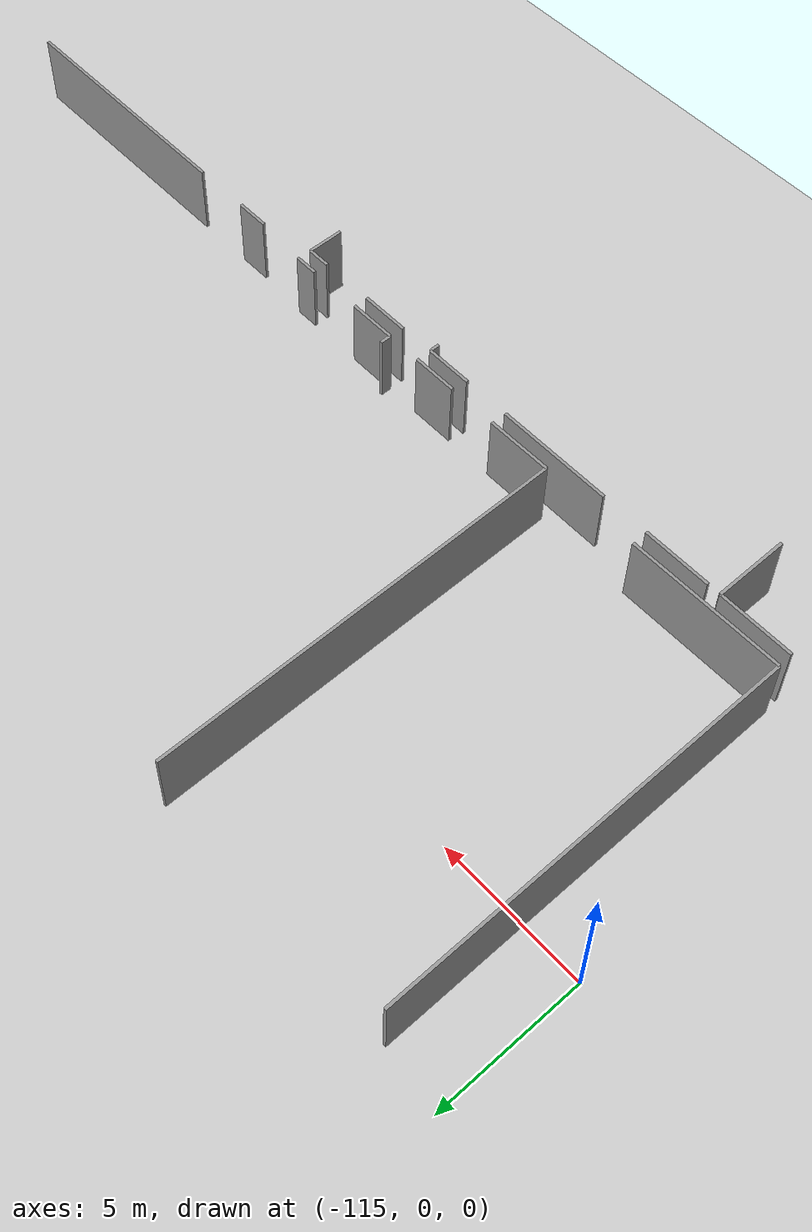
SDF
<sdf version="1.6">
 <world name="default">
  <model name="ground_plane">
   <static>1</static>
   <link name="link">
    <collision name="collision">
     <geometry><plane><normal>0 0 1</normal><size>100 100</size></plane></geometry>
     <surface><friction><ode><mu>100</mu><mu2>50</mu2></ode></friction></surface>
    </collision>
    <visual name="visual">
     <cast_shadows>0</cast_shadows>
     <geometry><plane><normal>0 0 1</normal><size>100 100</size></plane></geometry>
     <material>
      <script><uri>file://media/materials/scripts/gazebo.material</uri><name>Gazebo/Grey</name></script>
     </material>
    </visual>
   </link>
  </model>
  <model name="0510035341_A_40_1_103">
   <static>1</static>
   <link name="Wall_0">
    <collision name="Wall_0_Collision">
     <geometry><box><size>14.1568154403 0.1 2.5</size></box></geometry>
     <pose>7.07840772014 0 1.25 0 0 0</pose>
    </collision>
    <visual name="Wall_0_Visual">
     <pose>7.07840772014 0 1.25 0 0 0</pose>
     <geometry><box><size>14.1568154403 0.1 2.5</size></box></geometry>
     <material>
      <script><uri>file://media/materials/scripts/gazebo.material</uri><name>Gazebo/Grey</name></script>
      <ambient>1 1 1 1</ambient>
     </material>
    </visual>
    <pose>0.0 -33.466827503 0 0 0 1.57079632679</pose>
   </link>
   <link name="Wall_5">
    <collision name="Wall_5_Collision">
     <geometry><box><size>5.35012100205 0.1 2.5</size></box></geometry>
     <pose>2.67506050102 0 1.25 0 0 0</pose>
    </collision>
    <visual name="Wall_5_Visual">
     <pose>2.67506050102 0 1.25 0 0 0</pose>
     <geometry><box><size>5.35012100205 0.1 2.5</size></box></geometry>
     <material>
      <script><uri>file://media/materials/scripts/gazebo.material</uri><name>Gazebo/Grey</name></script>
      <ambient>1 1 1 1</ambient>
     </material>
    </visual>
    <pose>5.3500095232 -33.4322900133 0 0 0 -3.13513714921</pose>
   </link>
   <link name="Wall_6">
    <collision name="Wall_6_Collision">
     <geometry><box><size>14.1573233445 0.1 2.5</size></box></geometry>
     <pose>7.07866167227 0 1.25 0 0 0</pose>
    </collision>
    <visual name="Wall_6_Visual">
     <pose>7.07866167227 0 1.25 0 0 0</pose>
     <geometry><box><size>14.1573233445 0.1 2.5</size></box></geometry>
     <material>
      <script><uri>file://media/materials/scripts/gazebo.material</uri><name>Gazebo/Grey</name></script>
      <ambient>1 1 1 1</ambient>
     </material>
    </visual>
    <pose>8.8136626246 -33.4673354073 0 0 0 1.57079632679</pose>
   </link>
   <link name="Wall_13">
    <collision name="Wall_13_Collision">
     <geometry><box><size>0.806551964955 0.1 2.5</size></box></geometry>
     <pose>0.403275982477 0 1.25 0 0 0</pose>
    </collision>
    <visual name="Wall_13_Visual">
     <pose>0.403275982477 0 1.25 0 0 0</pose>
     <geometry><box><size>0.806551964955 0.1 2.5</size></box></geometry>
     <material>
      <script><uri>file://media/materials/scripts/gazebo.material</uri><name>Gazebo/Grey</name></script>
      <ambient>1 1 1 1</ambient>
     </material>
    </visual>
    <pose>19.8176623706 -33.4599707955 0 0 0 3.14159265359</pose>
   </link>
   <link name="Wall_14">
    <collision name="Wall_14_Collision">
     <geometry><box><size>1.62884896197 0.1 2.5</size></box></geometry>
     <pose>0.814424480985 0 1.25 0 0 0</pose>
    </collision>
    <visual name="Wall_14_Visual">
     <pose>0.814424480985 0 1.25 0 0 0</pose>
     <geometry><box><size>1.62884896197 0.1 2.5</size></box></geometry>
     <material>
      <script><uri>file://media/materials/scripts/gazebo.material</uri><name>Gazebo/Grey</name></script>
      <ambient>1 1 1 1</ambient>
     </material>
    </visual>
    <pose>17.1341502127 -33.4599707955 0 0 0 3.14159265359</pose>
   </link>
   <link name="Wall_15">
    <collision name="Wall_15_Collision">
     <geometry><box><size>0.371278014094 0.1 2.5</size></box></geometry>
     <pose>0.185639007047 0 1.25 0 0 0</pose>
    </collision>
    <visual name="Wall_15_Visual">
     <pose>0.185639007047 0 1.25 0 0 0</pose>
     <geometry><box><size>0.371278014094 0.1 2.5</size></box></geometry>
     <material>
      <script><uri>file://media/materials/scripts/gazebo.material</uri><name>Gazebo/Grey</name></script>
      <ambient>1 1 1 1</ambient>
     </material>
    </visual>
    <pose>15.5053012507 -33.4599707955 0 0 0 1.57079632679</pose>
   </link>
   <link name="Wall_18">
    <collision name="Wall_18_Collision">
     <geometry><box><size>1.54377499841 0.1 2.5</size></box></geometry>
     <pose>0.771887499206 0 1.25 0 0 0</pose>
    </collision>
    <visual name="Wall_18_Visual">
     <pose>0.771887499206 0 1.25 0 0 0</pose>
     <geometry><box><size>1.54377499841 0.1 2.5</size></box></geometry>
     <material>
      <script><uri>file://media/materials/scripts/gazebo.material</uri><name>Gazebo/Grey</name></script>
      <ambient>1 1 1 1</ambient>
     </material>
    </visual>
    <pose>14.2931877341 -33.4546378008 0 0 0 3.14159265359</pose>
   </link>
   <link name="Wall_19">
    <collision name="Wall_19_Collision">
     <geometry><box><size>2.24751221937 0.1 2.5</size></box></geometry>
     <pose>1.12375610968 0 1.25 0 0 0</pose>
    </collision>
    <visual name="Wall_19_Visual">
     <pose>1.12375610968 0 1.25 0 0 0</pose>
     <geometry><box><size>2.24751221937 0.1 2.5</size></box></geometry>
     <material>
      <script><uri>file://media/materials/scripts/gazebo.material</uri><name>Gazebo/Grey</name></script>
      <ambient>1 1 1 1</ambient>
     </material>
    </visual>
    <pose>11.0611389753 -33.4546378008 0 0 0 -3.13594299619</pose>
   </link>
   <link name="Wall_254">
    <collision name="Wall_254_Collision">
     <geometry><box><size>1.13237254777 0.1 2.5</size></box></geometry>
     <pose>0.566186273887 0 1.25 0 0 0</pose>
    </collision>
    <visual name="Wall_254_Visual">
     <pose>0.566186273887 0 1.25 0 0 0</pose>
     <geometry><box><size>1.13237254777 0.1 2.5</size></box></geometry>
     <material>
      <script><uri>file://media/materials/scripts/gazebo.material</uri><name>Gazebo/Grey</name></script>
      <ambient>1 1 1 1</ambient>
     </material>
    </visual>
    <pose>21.6491651324 -33.5973588978 0 0 0 0.0</pose>
   </link>
   <link name="Wall_255">
    <collision name="Wall_255_Collision">
     <geometry><box><size>8.49800012698 0.1 2.5</size></box></geometry>
     <pose>4.24900006349 0 1.25 0 0 0</pose>
    </collision>
    <visual name="Wall_255_Visual">
     <pose>4.24900006349 0 1.25 0 0 0</pose>
     <geometry><box><size>8.49800012698 0.1 2.5</size></box></geometry>
     <material>
      <script><uri>file://media/materials/scripts/gazebo.material</uri><name>Gazebo/Grey</name></script>
      <ambient>1 1 1 1</ambient>
     </material>
    </visual>
    <pose>24.740270459 -33.5973588978 0 0 0 0.0</pose>
   </link>
   <link name="Wall_455">
    <collision name="Wall_455_Collision">
     <geometry><box><size>2.5679639388 0.1 2.5</size></box></geometry>
     <pose>1.2839819694 0 1.25 0 0 0</pose>
    </collision>
    <visual name="Wall_455_Visual">
     <pose>1.2839819694 0 1.25 0 0 0</pose>
     <geometry><box><size>2.5679639388 0.1 2.5</size></box></geometry>
     <material>
      <script><uri>file://media/materials/scripts/gazebo.material</uri><name>Gazebo/Grey</name></script>
      <ambient>1 1 1 1</ambient>
     </material>
    </visual>
    <pose>0.0137134150213 -33.9813345184 0 0 0 0.0</pose>
   </link>
   <link name="Wall_456">
    <collision name="Wall_456_Collision">
     <geometry><box><size>2.53952130023 0.1 2.5</size></box></geometry>
     <pose>1.26976065012 0 1.25 0 0 0</pose>
    </collision>
    <visual name="Wall_456_Visual">
     <pose>1.26976065012 0 1.25 0 0 0</pose>
     <geometry><box><size>2.53952130023 0.1 2.5</size></box></geometry>
     <material>
      <script><uri>file://media/materials/scripts/gazebo.material</uri><name>Gazebo/Grey</name></script>
      <ambient>1 1 1 1</ambient>
     </material>
    </visual>
    <pose>2.58167735382 -33.9813345184 0 0 0 -1.57079632679</pose>
   </link>
   <link name="Wall_461">
    <collision name="Wall_461_Collision">
     <geometry><box><size>2.33508983557 0.1 2.5</size></box></geometry>
     <pose>1.16754491778 0 1.25 0 0 0</pose>
    </collision>
    <visual name="Wall_461_Visual">
     <pose>1.16754491778 0 1.25 0 0 0</pose>
     <geometry><box><size>2.33508983557 0.1 2.5</size></box></geometry>
     <material>
      <script><uri>file://media/materials/scripts/gazebo.material</uri><name>Gazebo/Grey</name></script>
      <ambient>1 1 1 1</ambient>
     </material>
    </visual>
    <pose>3.02583962923 -33.978541045 0 0 0 0.0</pose>
   </link>
   <link name="Wall_462">
    <collision name="Wall_462_Collision">
     <geometry><box><size>4.01930036188 0.1 2.5</size></box></geometry>
     <pose>2.00965018094 0 1.25 0 0 0</pose>
    </collision>
    <visual name="Wall_462_Visual">
     <pose>2.00965018094 0 1.25 0 0 0</pose>
     <geometry><box><size>4.01930036188 0.1 2.5</size></box></geometry>
     <material>
      <script><uri>file://media/materials/scripts/gazebo.material</uri><name>Gazebo/Grey</name></script>
      <ambient>1 1 1 1</ambient>
     </material>
    </visual>
    <pose>7.01339597486 -33.978541045 0 0 0 0.0</pose>
   </link>
   <link name="Wall_463">
    <collision name="Wall_463_Collision">
     <geometry><box><size>1.61208812139 0.1 2.5</size></box></geometry>
     <pose>0.806044060695 0 1.25 0 0 0</pose>
    </collision>
    <visual name="Wall_463_Visual">
     <pose>0.806044060695 0 1.25 0 0 0</pose>
     <geometry><box><size>1.61208812139 0.1 2.5</size></box></geometry>
     <material>
      <script><uri>file://media/materials/scripts/gazebo.material</uri><name>Gazebo/Grey</name></script>
      <ambient>1 1 1 1</ambient>
     </material>
    </visual>
    <pose>12.6551964955 -33.978541045 0 0 0 0.0</pose>
   </link>
   <link name="Wall_464">
    <collision name="Wall_464_Collision">
     <geometry><box><size>0.32759824773 0.1 2.5</size></box></geometry>
     <pose>0.163799123865 0 1.25 0 0 0</pose>
    </collision>
    <visual name="Wall_464_Visual">
     <pose>0.163799123865 0 1.25 0 0 0</pose>
     <geometry><box><size>0.32759824773 0.1 2.5</size></box></geometry>
     <material>
      <script><uri>file://media/materials/scripts/gazebo.material</uri><name>Gazebo/Grey</name></script>
      <ambient>1 1 1 1</ambient>
     </material>
    </visual>
    <pose>14.2672846168 -33.978541045 0 0 0 -1.57079632679</pose>
   </link>
   <link name="Wall_467">
    <collision name="Wall_467_Collision">
     <geometry><box><size>1.68014729224 0.1 2.5</size></box></geometry>
     <pose>0.840073646118 0 1.25 0 0 0</pose>
    </collision>
    <visual name="Wall_467_Visual">
     <pose>0.840073646118 0 1.25 0 0 0</pose>
     <geometry><box><size>1.68014729224 0.1 2.5</size></box></geometry>
     <material>
      <script><uri>file://media/materials/scripts/gazebo.material</uri><name>Gazebo/Grey</name></script>
      <ambient>1 1 1 1</ambient>
     </material>
    </visual>
    <pose>15.451209447 -33.9528918799 0 0 0 0.0</pose>
   </link>
   <link name="Wall_468">
    <collision name="Wall_468_Collision">
     <geometry><box><size>0.787251603073 0.1 2.5</size></box></geometry>
     <pose>0.393625801536 0 1.25 0 0 0</pose>
    </collision>
    <visual name="Wall_468_Visual">
     <pose>0.393625801536 0 1.25 0 0 0</pose>
     <geometry><box><size>0.787251603073 0.1 2.5</size></box></geometry>
     <material>
      <script><uri>file://media/materials/scripts/gazebo.material</uri><name>Gazebo/Grey</name></script>
      <ambient>1 1 1 1</ambient>
     </material>
    </visual>
    <pose>18.9920639959 -33.9528918799 0 0 0 0.0</pose>
   </link>
   <link name="Wall_469">
    <collision name="Wall_469_Collision">
     <geometry><box><size>1.23522316043 0.1 2.5</size></box></geometry>
     <pose>0.617611580217 0 1.25 0 0 0</pose>
    </collision>
    <visual name="Wall_469_Visual">
     <pose>0.617611580217 0 1.25 0 0 0</pose>
     <geometry><box><size>1.23522316043 0.1 2.5</size></box></geometry>
     <material>
      <script><uri>file://media/materials/scripts/gazebo.material</uri><name>Gazebo/Grey</name></script>
      <ambient>1 1 1 1</ambient>
     </material>
    </visual>
    <pose>19.779315599 -33.9528918799 0 0 0 -1.57079632679</pose>
   </link>
   <pose>-112.9 24.0688781665 0 0 0 0</pose>
  </model>
 </world>
</sdf>
